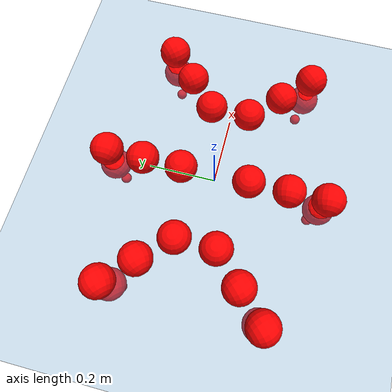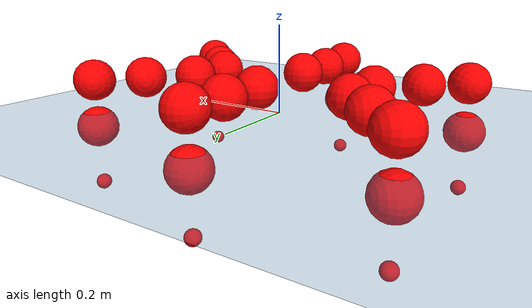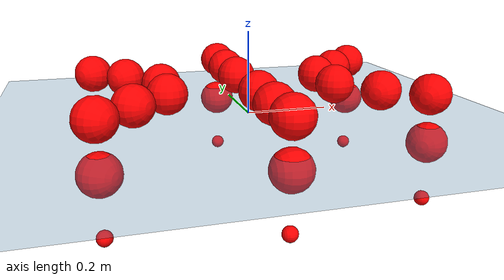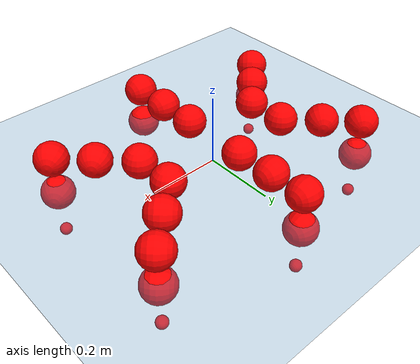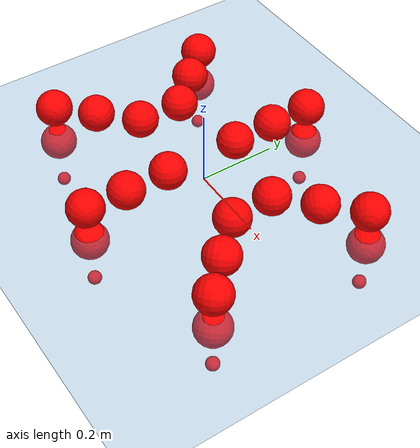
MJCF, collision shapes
<mujoco model="Golem">
  <compiler angle="radian" assetdir="assets" balanceinertia="true" inertiafromgeom="false"/>

  <option timestep="0.005" density="1.2" viscosity="2e-05"/>

  <size nkey="1"/>

  <visual>
    <quality shadowsize="8192"/>
    <map shadowclip="0.5"/>
  </visual>

  <default>
    <default class="/">
      <joint armature="0.01" damping="0.01" frictionloss="0.01"/>
      <geom contype="0" conaffinity="0" group="1" solref="-1000 -80"/>
      <site size="0.01 0.005 0.005" group="5"/>
      <general forcelimited="true" biastype="affine" gainprm="25" biasprm="0 -25 -0.5"/>
      <default class="visual">
        <geom type="mesh" group="2"/>
      </default>
      <default class="collision">
        <geom group="3"/>
      </default>
      <default class="foot">
        <geom size="0.01 0 0" condim="6" group="4" priority="1" solimp="0.015 1 0.01"/>
      </default>
      <default class="reward_collision_sphere">
        <geom group="5" rgba="1 0 0 1"/>
      </default>
    </default>
  </default>

  <asset>
    <texture type="skybox" colorspace="auto" name="//unnamed_texture_0" builtin="gradient" rgb1="0.95 0.95 0.95" rgb2="0.95 0.95 0.95" width="100" height="600"/>
    <texture type="2d" colorspace="auto" name="texplane" builtin="checker" rgb1="0.345 0.575 0.748" rgb2="0.345 0.575 0.748" markrgb="1 1 1" width="512" height="512"/>
    <material name="MatPlane" class="/" texture="texplane" texuniform="true" texrepeat="2 2" specular="0.9"/>
    <mesh name="body" class="/" file="body.stl" scale="0.001 0.001 0.001"/>
    <mesh name="coxa" class="/" file="coxa.stl" scale="0.001 0.001 0.001"/>
    <mesh name="femur" class="/" file="femur.stl" scale="0.001 0.001 0.001"/>
    <mesh name="tibia" class="/" file="tibia.stl" scale="0.001 0.001 0.001"/>
    <mesh name="tarsus" class="/" file="tarsus.stl" scale="0.001 0.001 0.001"/>
  </asset>

  <worldbody>
    <geom name="floor" class="/" size="100 100 0.125" type="plane" group="0" material="MatPlane"/>
    <light name="toplight_shadow" class="/" pos="0 0 5" dir="0.0990148 0.0990148 -0.990148" type="directional" ambient="0.04 0.04 0.04" diffuse="0.55 0.55 0.55" specular="0.12 0.12 0.12"/>
    <light name="toplight_fill" class="/" pos="0 0 5" dir="0.0990148 0.0990148 -0.990148" type="directional" castshadow="false" ambient="0.04 0.04 0.04" diffuse="0.3 0.3 0.3" specular="0.08 0.08 0.08"/>
    <body name="trunk" pos="-0.00266117 0.00034811 -0.00280995" quat="1 0.00014922 -1.17055e-05 -1.36121e-05">
      <inertial pos="0.000212642 -0.00212558 -0.00197996" quat="0.999986 0.000292823 0.00398899 0.00335181" mass="5.8328" diaginertia="0.0336721 0.0117433 0.0238144"/>
      <joint name="//unnamed_joint_0" type="free"/>
      <geom name="//unnamed_geom_1" class="/" pos="0 0 0.0764832" quat="1 0 0 0" type="mesh" rgba="0.9 0.9 0.9 1" mesh="body"/>
      <site name="imu" class="/" pos="0.181015 -0.0106405 0.10571" size="0.0117213"/>
      <camera name="track" class="/" pos="0 -2.06751 0" quat="0.707107 0.707107 0 0" mode="trackcom"/>
      <camera name="ego_camera" class="/" pos="0.167386 0 0.119505" quat="-0.5 -0.5 0.5 0.5"/>
      <body name="coxa_RR" pos="-0.229826 -0.0836013 0.0765898" quat="0.382342 -4.52159e-05 -0.000302977 -0.924021">
        <inertial pos="-0.00192421 0.000420485 -0.00241838" quat="0.999905 0.008943 -0.00425983 -0.00961505" mass="0.313165" diaginertia="0.0350713 0.0115898 0.0236012"/>
        <joint name="coxa_joint_RR" class="/" pos="0 0 0" axis="0.00907858 -0.00222893 -0.999956" range="-3.19138 3.16083" armature="0.010099" damping="0" frictionloss="0.0100646"/>
        <geom name="//unnamed_geom_2" class="/" type="mesh" rgba="0.2 0.2 0.2 1" mesh="coxa"/>
        <geom name="//unnamed_geom_3" class="reward_collision_sphere" size="0.0468853" pos="-0.0386276 0 0"/>
        <body name="femur_RR" pos="0.0767347 -0.000697534 -0.000500616" quat="0.499962 -0.500009 0.500137 0.499891">
          <inertial pos="-0.0026235 0.00112899 0.000191003" quat="0.999992 0.00358175 0.00151425 -0.000275364" mass="0.321922" diaginertia="0.0360494 0.0119822 0.0244462"/>
          <joint name="femur_joint_RR" class="/" pos="0 0 0" axis="-0.00984491 -0.00431884 -0.999942" range="-3.12912 3.14321" armature="0.0128798" damping="0.0227051" frictionloss="0.011793"/>
          <geom name="//unnamed_geom_4" class="/" type="mesh" rgba="0.9 0.9 0.9 1" mesh="femur"/>
          <geom name="//unnamed_geom_5" class="reward_collision_sphere" size="0.0468853"/>
          <body name="tibia_RR" pos="0.0014268 -0.111626 0.000208157" quat="-0.000262481 1 0.000277083 0.000213449">
            <inertial pos="0.00272766 7.61639e-05 -0.000261667" quat="0.999995 -0.000432245 0.000601944 0.00317819" mass="0.33494" diaginertia="0.0351741 0.0117851 0.0244856"/>
            <joint name="tibia_joint_RR" class="/" pos="0 0 0" axis="-9.50779e-05 -0.00276312 0.999996" range="-3.13812 3.14199" armature="0.0112787" damping="0.0151361" frictionloss="0.0100946"/>
            <geom name="//unnamed_geom_6" class="/" type="mesh" rgba="0.2 0.2 0.2 1" mesh="tibia"/>
            <geom name="//unnamed_geom_7" class="reward_collision_sphere" size="0.0468853"/>
            <body name="tarsus_RR" pos="0.1133 -0.000443465 -0.000556335" quat="1 4.7396e-05 -0.000263804 7.69602e-05">
              <inertial pos="0.0746898 -0.000325412 0.000477228" quat="0.490401 0.496569 0.503787 0.509042" mass="0.327831" diaginertia="0.0355216 0.0114408 0.0241935"/>
              <joint name="tarsus_joint_RR" class="/" pos="0 0 0" axis="0.0102495 0.00880696 0.999909" range="-3.14579 3.13811" armature="0.0111454" damping="0.0174108" frictionloss="0.0112313"/>
              <geom name="//unnamed_geom_8" class="/" type="mesh" rgba="0.9 0.9 0.9 1" mesh="tarsus"/>
              <geom name="foot_1" class="foot" size="0.0128632" pos="0.14421 0 0" quat="0 -0.707107 0 0.707107"/>
              <geom name="//unnamed_geom_10" class="reward_collision_sphere" size="0.0468853"/>
              <geom name="//unnamed_geom_11" class="reward_collision_sphere" size="0.017582" pos="0.138416 0 0"/>
              <site name="foot_1" class="foot" pos="0.14421 0 0" quat="0 -0.707107 0 0.707107" size="0.0117213"/>
            </body>
          </body>
        </body>
      </body>
      <body name="coxa_RM" pos="-0.00134817 -0.138359 0.0812218" quat="0.707238 0.000715344 0.00118604 -0.706974">
        <inertial pos="-0.000959896 -0.00283961 -0.00135833" quat="0.999996 -0.00029168 1.15848e-05 -0.00285276" mass="0.330577" diaginertia="0.0370064 0.0117935 0.0252443"/>
        <joint name="coxa_joint_RM" class="/" pos="0 0 0" axis="-0.00977303 0.00662111 -0.99993" range="-3.15537 3.14436" armature="0.0119013" damping="0.0129265" frictionloss="0.0118985"/>
        <geom name="//unnamed_geom_12" class="/" type="mesh" rgba="0.2 0.2 0.2 1" mesh="coxa"/>
        <geom name="//unnamed_geom_13" class="reward_collision_sphere" size="0.0468853" pos="-0.0386276 0 0"/>
        <body name="femur_RM" pos="0.0767711 0.000264468 -0.00129984" quat="0.499591 -0.500215 0.499805 0.500389">
          <inertial pos="-0.000940077 -0.00294909 -0.000123389" quat="0.999997 -0.00155366 0.000359361 -0.00206131" mass="0.330382" diaginertia="0.0356232 0.0118757 0.0252709"/>
          <joint name="femur_joint_RM" class="/" pos="0 0 0" axis="-0.0094719 0.0111838 -0.999893" stiffness="0.00912361" range="-3.11216 3.16247" armature="0.0131704" damping="0.0208569" frictionloss="0.0108401"/>
          <geom name="//unnamed_geom_14" class="/" type="mesh" rgba="0.9 0.9 0.9 1" mesh="femur"/>
          <geom name="//unnamed_geom_15" class="reward_collision_sphere" size="0.0468853"/>
          <body name="tibia_RM" pos="-0.00260094 -0.108424 2.35894e-05" quat="2.68397e-05 0.999999 0.000851641 -0.00108181">
            <inertial pos="-0.000131361 0.00152268 0.000655529" quat="1 9.04591e-05 0.000121133 0.000220552" mass="0.328119" diaginertia="0.0376737 0.0125953 0.0250232"/>
            <joint name="tibia_joint_RM" class="/" pos="0 0 0" axis="-0.000335647 0.00524648 0.999986" range="-3.09196 3.10387" armature="0.0116717" damping="0" frictionloss="0.0132968"/>
            <geom name="//unnamed_geom_16" class="/" type="mesh" rgba="0.2 0.2 0.2 1" mesh="tibia"/>
            <geom name="//unnamed_geom_17" class="reward_collision_sphere" size="0.0468853"/>
            <body name="tarsus_RM" pos="0.110179 -0.00150624 -0.00096819" quat="1 -4.08328e-06 5.62728e-06 8.43333e-06">
              <inertial pos="0.0759439 -0.000197085 0.00288026" quat="0.496096 0.510309 0.496762 0.496689" mass="0.329979" diaginertia="0.037606 0.0121523 0.0249027"/>
              <joint name="tarsus_joint_RM" class="/" pos="0 0 0" axis="-0.000813548 -0.0102236 0.999947" range="-3.17297 3.12375" armature="0.0115364" damping="0.0146441" frictionloss="0.0109163"/>
              <geom name="//unnamed_geom_18" class="/" type="mesh" rgba="0.9 0.9 0.9 1" mesh="tarsus"/>
              <geom name="foot_2" class="foot" size="0.0126127" pos="0.14421 0 0" quat="0 -0.707107 0 0.707107"/>
              <geom name="//unnamed_geom_20" class="reward_collision_sphere" size="0.0468853"/>
              <geom name="//unnamed_geom_21" class="reward_collision_sphere" size="0.017582" pos="0.138416 0 0"/>
              <site name="foot_2" class="foot" pos="0.14421 0 0" quat="0 -0.707107 0 0.707107" size="0.0117213"/>
            </body>
          </body>
        </body>
      </body>
      <body name="coxa_RF" pos="0.231767 -0.0829436 0.0759425" quat="0.924298 0.000429532 -0.000568865 -0.38167">
        <inertial pos="0.00254659 0.000391329 0.000916697" quat="0.99996 0.00562864 -0.00476706 -0.00502543" mass="0.326836" diaginertia="0.0356838 0.0123265 0.0254946"/>
        <joint name="coxa_joint_RF" class="/" pos="0 0 0" axis="0.0129737 0.00710773 -0.999891" range="-3.1367 3.19002" armature="0.0120433" damping="0" frictionloss="0.0117191"/>
        <geom name="//unnamed_geom_22" class="/" type="mesh" rgba="0.2 0.2 0.2 1" mesh="coxa"/>
        <geom name="//unnamed_geom_23" class="reward_collision_sphere" size="0.0468853" pos="-0.0386276 0 0"/>
        <body name="femur_RF" pos="0.0771606 -0.00215742 -0.00295719" quat="0.500069 -0.499968 0.499569 0.500394">
          <inertial pos="8.62583e-05 -1.28308e-05 0.00223858" quat="0.999967 0.00251088 0.00762527 -0.00121045" mass="0.323271" diaginertia="0.0353963 0.012189 0.0255528"/>
          <joint name="femur_joint_RF" class="/" pos="0 0 0" axis="7.45584e-05 0.00300852 -0.999995" range="-3.11721 3.15851" armature="0.0118829" damping="0.00725764" frictionloss="0.010278"/>
          <geom name="//unnamed_geom_24" class="/" type="mesh" rgba="0.9 0.9 0.9 1" mesh="femur"/>
          <geom name="//unnamed_geom_25" class="reward_collision_sphere" size="0.0468853"/>
          <body name="tibia_RF" pos="-0.0026771 -0.112401 0.00294283" quat="6.7555e-05 1 9.16713e-05 -1.53575e-05">
            <inertial pos="0.00270002 -0.00267474 -8.25181e-06" quat="0.999996 0.000601087 -0.000544239 0.00268686" mass="0.314147" diaginertia="0.0350636 0.0114347 0.0243059"/>
            <joint name="tibia_joint_RF" class="/" pos="0 0 0" axis="0.00928569 0.005675 0.999941" range="-3.1412 3.13771" armature="0.0121547" damping="0.018788" frictionloss="0.0122348"/>
            <geom name="//unnamed_geom_26" class="/" type="mesh" rgba="0.2 0.2 0.2 1" mesh="tibia"/>
            <geom name="//unnamed_geom_27" class="reward_collision_sphere" size="0.0468853"/>
            <body name="tarsus_RF" pos="0.113098 0.000449332 0.000420674" quat="0.999999 -4.39816e-05 -0.00139107 0.000297258">
              <inertial pos="0.0805096 -0.00148006 0.00222694" quat="0.494472 0.497532 0.499794 0.508099" mass="0.319727" diaginertia="0.0356435 0.0115132 0.0252647"/>
              <joint name="tarsus_joint_RF" class="/" pos="0 0 0" axis="-0.00863647 0.00711388 0.999937" range="-3.18721 3.13677" armature="0.0117979" damping="0.0122364" frictionloss="0.01066"/>
              <geom name="//unnamed_geom_28" class="/" type="mesh" rgba="0.9 0.9 0.9 1" mesh="tarsus"/>
              <geom name="foot_3" class="foot" size="0.0118722" pos="0.14421 0 0" quat="0 -0.707107 0 0.707107"/>
              <geom name="//unnamed_geom_30" class="reward_collision_sphere" size="0.0468853"/>
              <geom name="//unnamed_geom_31" class="reward_collision_sphere" size="0.017582" pos="0.138416 0 0"/>
              <site name="foot_3" class="foot" pos="0.14421 0 0" quat="0 -0.707107 0 0.707107" size="0.0117213"/>
            </body>
          </body>
        </body>
      </body>
      <body name="coxa_LR" pos="-0.227848 0.0867328 0.0776541" quat="0.38205 -0.0010352 0.000484612 0.924141">
        <inertial pos="-0.000303546 -0.00118188 0.0018948" quat="0.999993 -0.00203909 -0.00297272 -0.000303354" mass="0.324157" diaginertia="0.0365845 0.0122696 0.0247602"/>
        <joint name="coxa_joint_LR" class="/" pos="0 0 0" axis="-0.0046986 -0.00302919 -0.999984" range="-3.19393 3.17881" armature="0.0102251" damping="0.0149414" frictionloss="0.0111813"/>
        <geom name="//unnamed_geom_32" class="/" type="mesh" rgba="0.2 0.2 0.2 1" mesh="coxa"/>
        <geom name="//unnamed_geom_33" class="reward_collision_sphere" size="0.0468853" pos="-0.0386276 0 0"/>
        <body name="femur_LR" pos="0.0750759 -0.00295241 0.00176833" quat="0.499637 -0.499489 0.500509 0.500364">
          <inertial pos="0.00157919 -0.00278028 0.002448" quat="0.999936 0.00998475 -0.00509801 0.00135392" mass="0.324607" diaginertia="0.0360273 0.011947 0.024661"/>
          <joint name="femur_joint_LR" class="/" pos="0 0 0" axis="0.00288701 0.00884477 0.999957" stiffness="0.00561424" range="-3.14521 3.11512" armature="0.0110571" damping="0" frictionloss="0.0113883"/>
          <geom name="//unnamed_geom_34" class="/" type="mesh" rgba="0.9 0.9 0.9 1" mesh="femur"/>
          <geom name="//unnamed_geom_35" class="reward_collision_sphere" size="0.0468853"/>
          <body name="tibia_LR" pos="0.000959968 -0.109904 -0.000132773" quat="7.62701e-05 0.999999 -0.0011031 0.000826489">
            <inertial pos="0.00284331 -0.00195113 0.00201289" quat="0.999997 -0.00227918 0.00104516 0.000170869" mass="0.334669" diaginertia="0.0363053 0.0122173 0.0237848"/>
            <joint name="tibia_joint_LR" class="/" pos="0 0 0" axis="-0.00333329 0.00676485 -0.999972" range="-3.14332 3.10123" armature="0.0103661" damping="0.0141209" frictionloss="0.0116733"/>
            <geom name="//unnamed_geom_36" class="/" type="mesh" rgba="0.2 0.2 0.2 1" mesh="tibia"/>
            <geom name="//unnamed_geom_37" class="reward_collision_sphere" size="0.0468853"/>
            <body name="tarsus_LR" pos="0.114188 -0.000422664 -0.00229806" quat="1 0.000405301 0.00012346 -0.000370301">
              <inertial pos="0.0758032 -0.00194187 -0.00206068" quat="0.500635 0.498811 0.500707 0.499845" mass="0.320559" diaginertia="0.0355383 0.0116946 0.0254382"/>
              <joint name="tarsus_joint_LR" class="/" pos="0 0 0" axis="0.00221469 -0.00159124 -0.999996" range="-3.1239 3.11811" armature="0.0132448" damping="0.0272631" frictionloss="0.0126146"/>
              <geom name="//unnamed_geom_38" class="/" type="mesh" rgba="0.9 0.9 0.9 1" mesh="tarsus"/>
              <geom name="foot_4" class="foot" size="0.0115285" pos="0.14421 0 0" quat="0.707107 0 -0.707107 0"/>
              <geom name="//unnamed_geom_40" class="reward_collision_sphere" size="0.0468853"/>
              <geom name="//unnamed_geom_41" class="reward_collision_sphere" size="0.017582" pos="0.138416 0 0"/>
              <site name="foot_4" class="foot" pos="0.14421 0 0" quat="0.707107 0 -0.707107 0" size="0.0117213"/>
            </body>
          </body>
        </body>
      </body>
      <body name="coxa_LM" pos="-0.00284652 0.134687 0.0798283" quat="0.707078 -5.09727e-05 -0.000121011 0.707136">
        <inertial pos="0.0017721 0.000441744 0.00271572" quat="0.999936 0.0082047 0.00592333 -0.00499122" mass="0.315125" diaginertia="0.0345849 0.0115652 0.0234291"/>
        <joint name="coxa_joint_LM" class="/" pos="0 0 0" axis="0.000644129 -0.00797555 -0.999968" stiffness="0.00908361" range="-3.1482 3.13147" armature="0.0114006" damping="0" frictionloss="0.0100782"/>
        <geom name="//unnamed_geom_42" class="/" type="mesh" rgba="0.2 0.2 0.2 1" mesh="coxa"/>
        <geom name="//unnamed_geom_43" class="reward_collision_sphere" size="0.0468853" pos="-0.0386276 0 0"/>
        <body name="femur_LM" pos="0.0740331 0.000530475 0.00141974" quat="0.499857 -0.500063 0.499968 0.500112">
          <inertial pos="0.00269802 0.000450634 -0.00285292" quat="0.99995 -0.00229167 0.00733104 -0.00646591" mass="0.323349" diaginertia="0.0366429 0.0123237 0.0257352"/>
          <joint name="femur_joint_LM" class="/" pos="0 0 0" axis="-0.00293286 -0.00269126 0.999992" range="-3.11922 3.08353" armature="0.0109044" damping="0.0191284" frictionloss="0.0118071"/>
          <geom name="//unnamed_geom_44" class="/" type="mesh" rgba="0.9 0.9 0.9 1" mesh="femur"/>
          <geom name="//unnamed_geom_45" class="reward_collision_sphere" size="0.0468853"/>
          <body name="tibia_LM" pos="-0.00228576 -0.106928 -0.000531474" quat="-5.2958e-05 1 0.000672601 -0.000560318">
            <inertial pos="-0.00104364 0.000363899 -0.000347656" quat="0.999949 0.00393152 0.00899916 0.00237492" mass="0.32079" diaginertia="0.0347331 0.011515 0.0249258"/>
            <joint name="tibia_joint_LM" class="/" pos="0 0 0" axis="-2.42578e-05 -0.00021426 -1" stiffness="0.0104159" range="-3.10553 3.08469" armature="0.010197" damping="0.0140857" frictionloss="0.0119009"/>
            <geom name="//unnamed_geom_46" class="/" type="mesh" rgba="0.2 0.2 0.2 1" mesh="tibia"/>
            <geom name="//unnamed_geom_47" class="reward_collision_sphere" size="0.0468853"/>
            <body name="tarsus_LM" pos="0.114937 0.00120118 -0.00274121" quat="0.999999 0.000949108 -0.000458271 -0.000552195">
              <inertial pos="0.0753951 -0.000159099 -0.0027355" quat="0.504233 0.501563 0.50212 0.491995" mass="0.329278" diaginertia="0.0347749 0.0118046 0.0239474"/>
              <joint name="tarsus_joint_LM" class="/" pos="0 0 0" axis="0.00258082 -0.00232009 -0.999994" range="-3.09202 3.14008" armature="0.0128989" damping="0.0143983" frictionloss="0.0112958"/>
              <geom name="//unnamed_geom_48" class="/" type="mesh" rgba="0.9 0.9 0.9 1" mesh="tarsus"/>
              <geom name="foot_5" class="foot" size="0.0116021" pos="0.14421 0 0" quat="0.707107 0 -0.707107 0"/>
              <geom name="//unnamed_geom_50" class="reward_collision_sphere" size="0.0468853"/>
              <geom name="//unnamed_geom_51" class="reward_collision_sphere" size="0.017582" pos="0.138416 0 0"/>
              <site name="foot_5" class="foot" pos="0.14421 0 0" quat="0.707107 0 -0.707107 0" size="0.0117213"/>
            </body>
          </body>
        </body>
      </body>
      <body name="coxa_LF" pos="0.229425 0.0851303 0.0791041" quat="0.924283 0.000234006 0.000255275 0.381707">
        <inertial pos="0.000171528 -0.000216517 -0.000730796" quat="0.999971 0.00627632 0.00310363 -0.00311673" mass="0.328928" diaginertia="0.0358108 0.0116634 0.0241893"/>
        <joint name="coxa_joint_LF" class="/" pos="0 0 0" axis="-0.00508191 -0.00913754 -0.999945" range="-3.08969 3.13592" armature="0.0133283" damping="0.0157147" frictionloss="0.0105459"/>
        <geom name="//unnamed_geom_52" class="/" type="mesh" rgba="0.2 0.2 0.2 1" mesh="coxa"/>
        <geom name="//unnamed_geom_53" class="reward_collision_sphere" size="0.0468853" pos="-0.0386276 0 0"/>
        <body name="femur_LF" pos="0.0750552 -0.00187608 -0.000309985" quat="0.500077 -0.49973 0.500067 0.500125">
          <inertial pos="-8.66358e-05 0.00270356 -0.00158582" quat="0.99998 0.00303294 -0.00122516 0.00534454" mass="0.334812" diaginertia="0.0376557 0.0121434 0.0244859"/>
          <joint name="femur_joint_LF" class="/" pos="0 0 0" axis="0.00471912 -0.00900248 0.999948" stiffness="0.0091603" range="-3.15809 3.14416" armature="0.013272" damping="0.00115681" frictionloss="0.0117503"/>
          <geom name="//unnamed_geom_54" class="/" type="mesh" rgba="0.9 0.9 0.9 1" mesh="femur"/>
          <geom name="//unnamed_geom_55" class="reward_collision_sphere" size="0.0468853"/>
          <body name="tibia_LF" pos="0.00170772 -0.114378 0.000141373" quat="-0.000230489 1 0.000350732 0.000153389">
            <inertial pos="0.000972712 0.00103397 -2.22636e-05" quat="0.999944 -0.00170806 0.00998978 0.00317335" mass="0.319082" diaginertia="0.0345771 0.0120783 0.0241433"/>
            <joint name="tibia_joint_LF" class="/" pos="0 0 0" axis="-0.00509889 0.0111602 -0.999925" stiffness="0.00864365" range="-3.08673 3.11795" armature="0.0112646" damping="0" frictionloss="0.010109"/>
            <geom name="//unnamed_geom_56" class="/" type="mesh" rgba="0.2 0.2 0.2 1" mesh="tibia"/>
            <geom name="//unnamed_geom_57" class="reward_collision_sphere" size="0.0468853"/>
            <body name="tarsus_LF" pos="0.110433 0.00229467 0.00117451" quat="1 -2.21246e-05 -2.8486e-05 2.10331e-05">
              <inertial pos="0.074723 -0.000985936 0.00101635" quat="0.495375 0.506992 0.49493 0.5026" mass="0.316532" diaginertia="0.0356475 0.0117415 0.024117"/>
              <joint name="tarsus_joint_LF" class="/" pos="0 0 0" axis="0.00066333 -0.000227161 -1" stiffness="0.00465698" range="-3.17793 3.12231" armature="0.0135204" damping="0.0181559" frictionloss="0.0133807"/>
              <geom name="//unnamed_geom_58" class="/" type="mesh" rgba="0.9 0.9 0.9 1" mesh="tarsus"/>
              <geom name="foot_6" class="foot" size="0.0127969" pos="0.14421 0 0" quat="0.707107 0 -0.707107 0"/>
              <geom name="//unnamed_geom_60" class="reward_collision_sphere" size="0.0468853"/>
              <geom name="//unnamed_geom_61" class="reward_collision_sphere" size="0.017582" pos="0.138416 0 0"/>
              <site name="foot_6" class="foot" pos="0.14421 0 0" quat="0.707107 0 -0.707107 0" size="0.0117213"/>
            </body>
          </body>
        </body>
      </body>
    </body>
  </worldbody>

  <contact>
    <pair class="/" geom1="floor" geom2="foot_1" name="//unnamed_contact_0"/>
    <pair class="/" geom1="floor" geom2="foot_2" name="//unnamed_contact_1"/>
    <pair class="/" geom1="floor" geom2="foot_3" name="//unnamed_contact_2"/>
    <pair class="/" geom1="floor" geom2="foot_4" name="//unnamed_contact_3"/>
    <pair class="/" geom1="floor" geom2="foot_5" name="//unnamed_contact_4"/>
    <pair class="/" geom1="floor" geom2="foot_6" name="//unnamed_contact_5"/>
  </contact>

  <actuator>
    <general name="coxa_joint_RR" class="/" joint="coxa_joint_RR" forcerange="-8.21279 8.21279" gainprm="28.8342" biasprm="0 -28.8342 -0.620193"/>
    <general name="femur_joint_RR" class="/" joint="femur_joint_RR" forcerange="-8.45877 8.45877" gainprm="28.8342" biasprm="0 -28.8342 -0.620193"/>
    <general name="tibia_joint_RR" class="/" joint="tibia_joint_RR" forcerange="-8.4811 8.4811" gainprm="28.8342" biasprm="0 -28.8342 -0.620193"/>
    <general name="tarsus_joint_RR" class="/" joint="tarsus_joint_RR" forcerange="-8.29386 8.29386" gainprm="28.8342" biasprm="0 -28.8342 -0.620193"/>
    <general name="coxa_joint_RM" class="/" joint="coxa_joint_RM" forcerange="-8.83975 8.83975" gainprm="28.8342" biasprm="0 -28.8342 -0.620193"/>
    <general name="femur_joint_RM" class="/" joint="femur_joint_RM" forcerange="-8.45059 8.45059" gainprm="28.8342" biasprm="0 -28.8342 -0.620193"/>
    <general name="tibia_joint_RM" class="/" joint="tibia_joint_RM" forcerange="-8.50687 8.50687" gainprm="28.8342" biasprm="0 -28.8342 -0.620193"/>
    <general name="tarsus_joint_RM" class="/" joint="tarsus_joint_RM" forcerange="-7.7902 7.7902" gainprm="28.8342" biasprm="0 -28.8342 -0.620193"/>
    <general name="coxa_joint_RF" class="/" joint="coxa_joint_RF" forcerange="-8.85298 8.85298" gainprm="28.8342" biasprm="0 -28.8342 -0.620193"/>
    <general name="femur_joint_RF" class="/" joint="femur_joint_RF" forcerange="-8.49021 8.49021" gainprm="28.8342" biasprm="0 -28.8342 -0.620193"/>
    <general name="tibia_joint_RF" class="/" joint="tibia_joint_RF" forcerange="-8.47076 8.47076" gainprm="28.8342" biasprm="0 -28.8342 -0.620193"/>
    <general name="tarsus_joint_RF" class="/" joint="tarsus_joint_RF" forcerange="-8.12827 8.12827" gainprm="28.8342" biasprm="0 -28.8342 -0.620193"/>
    <general name="coxa_joint_LR" class="/" joint="coxa_joint_LR" forcerange="-7.85689 7.85689" gainprm="28.8342" biasprm="0 -28.8342 -0.620193"/>
    <general name="femur_joint_LR" class="/" joint="femur_joint_LR" forcerange="-7.9688 7.9688" gainprm="28.8342" biasprm="0 -28.8342 -0.620193"/>
    <general name="tibia_joint_LR" class="/" joint="tibia_joint_LR" forcerange="-8.60586 8.60586" gainprm="28.8342" biasprm="0 -28.8342 -0.620193"/>
    <general name="tarsus_joint_LR" class="/" joint="tarsus_joint_LR" forcerange="-8.48043 8.48043" gainprm="28.8342" biasprm="0 -28.8342 -0.620193"/>
    <general name="coxa_joint_LM" class="/" joint="coxa_joint_LM" forcerange="-8.72956 8.72956" gainprm="28.8342" biasprm="0 -28.8342 -0.620193"/>
    <general name="femur_joint_LM" class="/" joint="femur_joint_LM" forcerange="-7.67321 7.67321" gainprm="28.8342" biasprm="0 -28.8342 -0.620193"/>
    <general name="tibia_joint_LM" class="/" joint="tibia_joint_LM" forcerange="-8.58 8.58" gainprm="28.8342" biasprm="0 -28.8342 -0.620193"/>
    <general name="tarsus_joint_LM" class="/" joint="tarsus_joint_LM" forcerange="-9.46129 9.46129" gainprm="28.8342" biasprm="0 -28.8342 -0.620193"/>
    <general name="coxa_joint_LF" class="/" joint="coxa_joint_LF" forcerange="-7.93742 7.93742" gainprm="28.8342" biasprm="0 -28.8342 -0.620193"/>
    <general name="femur_joint_LF" class="/" joint="femur_joint_LF" forcerange="-9.36184 9.36184" gainprm="28.8342" biasprm="0 -28.8342 -0.620193"/>
    <general name="tibia_joint_LF" class="/" joint="tibia_joint_LF" forcerange="-8.55927 8.55927" gainprm="28.8342" biasprm="0 -28.8342 -0.620193"/>
    <general name="tarsus_joint_LF" class="/" joint="tarsus_joint_LF" forcerange="-8.62499 8.62499" gainprm="28.8342" biasprm="0 -28.8342 -0.620193"/>
  </actuator>

  <sensor>
    <gyro site="imu" name="imu_angular_velocity"/>
    <velocimeter site="imu" name="imu_linear_velocity"/>
    <framelinvel objtype="site" objname="foot_1" name="foot_1_global_linear_velocity"/>
    <framelinvel objtype="site" objname="foot_2" name="foot_2_global_linear_velocity"/>
    <framelinvel objtype="site" objname="foot_3" name="foot_3_global_linear_velocity"/>
    <framelinvel objtype="site" objname="foot_4" name="foot_4_global_linear_velocity"/>
    <framelinvel objtype="site" objname="foot_5" name="foot_5_global_linear_velocity"/>
    <framelinvel objtype="site" objname="foot_6" name="foot_6_global_linear_velocity"/>
  </sensor>

  <keyframe>
    <key name="home" qpos="0 0 0.1457 1 0 0 0 0 0 0 0 0 0 0 0 0 0 0 0 0 0 0 0 0 0 0 0 0 0 0 0"/>
  </keyframe>
</mujoco>
